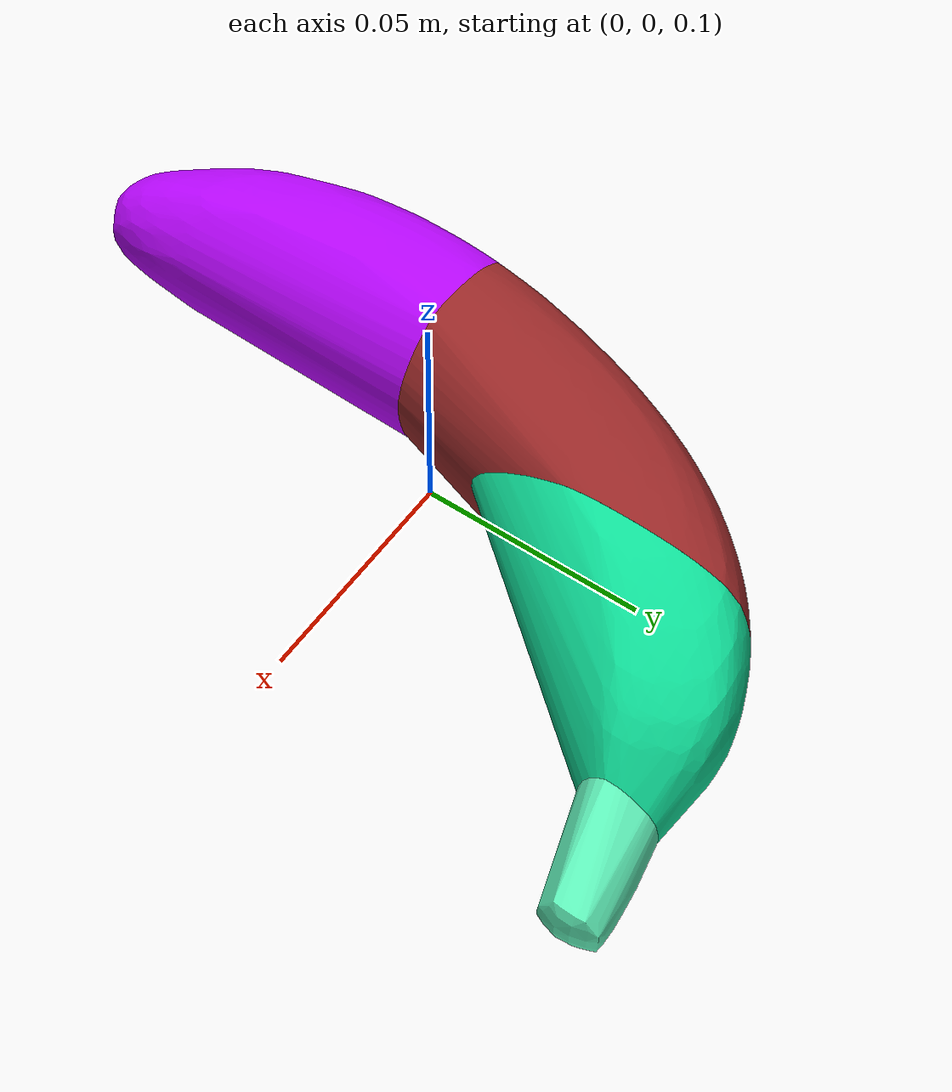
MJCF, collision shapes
<mujoco model="011_banana">
  <compiler assetdir="meshes" texturedir="materials"/>

  <asset>
    <texture type="2d" name="texture" file="011_banana_texture_map.png"/>
    <material name="texture" texture="texture"/>

    <mesh file="011_banana_textured.obj"/>
    <mesh file="011_banana_coacd_part_000.obj"/>
    <mesh file="011_banana_coacd_part_001.obj"/>
    <mesh file="011_banana_coacd_part_002.obj"/>
    <mesh file="011_banana_coacd_part_003.obj"/>
  </asset>

  <default>
    <default class="011_banana">
      <default class="visual_011_banana">
        <geom type="mesh" group="2" density="200" contype="0" conaffinity="0" material="texture"/>
      </default>
      <default class="collision_011_banana">
        <geom type="mesh" group="3" mass="0" density="0" solref=".004 1" friction="1.0 0.01 0.01" condim="6"/>
      </default>
    </default>
  </default>

  <worldbody>
    <body childclass="011_banana" pos="0 0 0.1">
      <freejoint/>
      <geom class="visual_011_banana" mesh="011_banana_textured"/>
      <geom class="collision_011_banana" mesh="011_banana_coacd_part_000" rgba="0.375 0.95 0.73 1"/>
      <geom class="collision_011_banana" mesh="011_banana_coacd_part_001" rgba="0.599 0.16 0.16 1"/>
      <geom class="collision_011_banana" mesh="011_banana_coacd_part_002" rgba="0.058 0.87 0.60 1"/>
      <geom class="collision_011_banana" mesh="011_banana_coacd_part_003" rgba="0.708 0.02 0.97 1"/>
    </body>
  </worldbody>
</mujoco>
